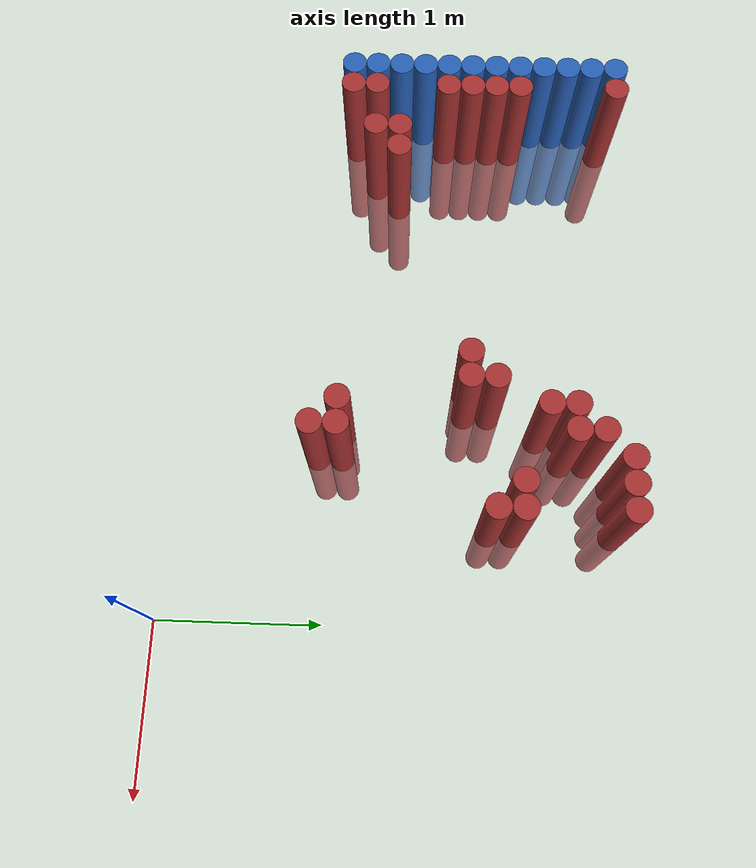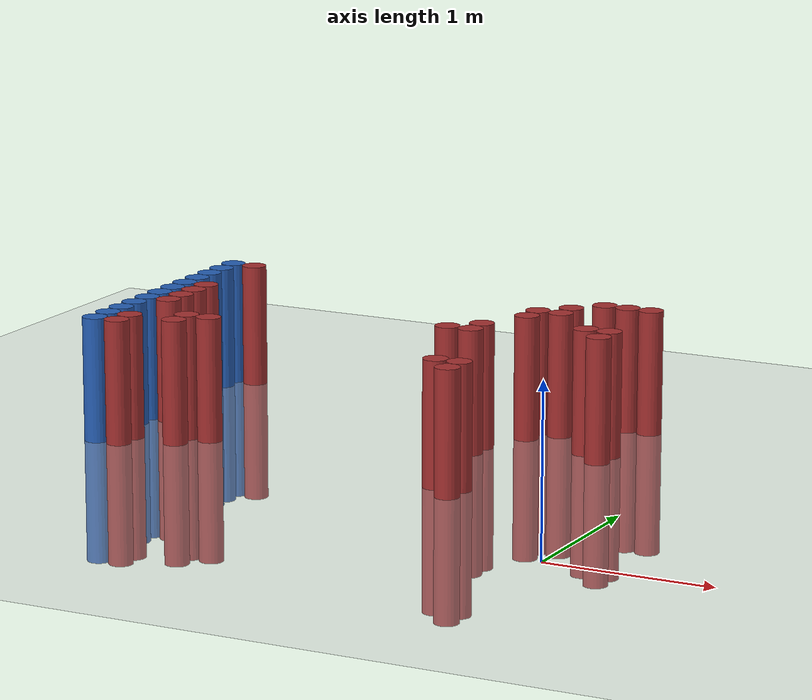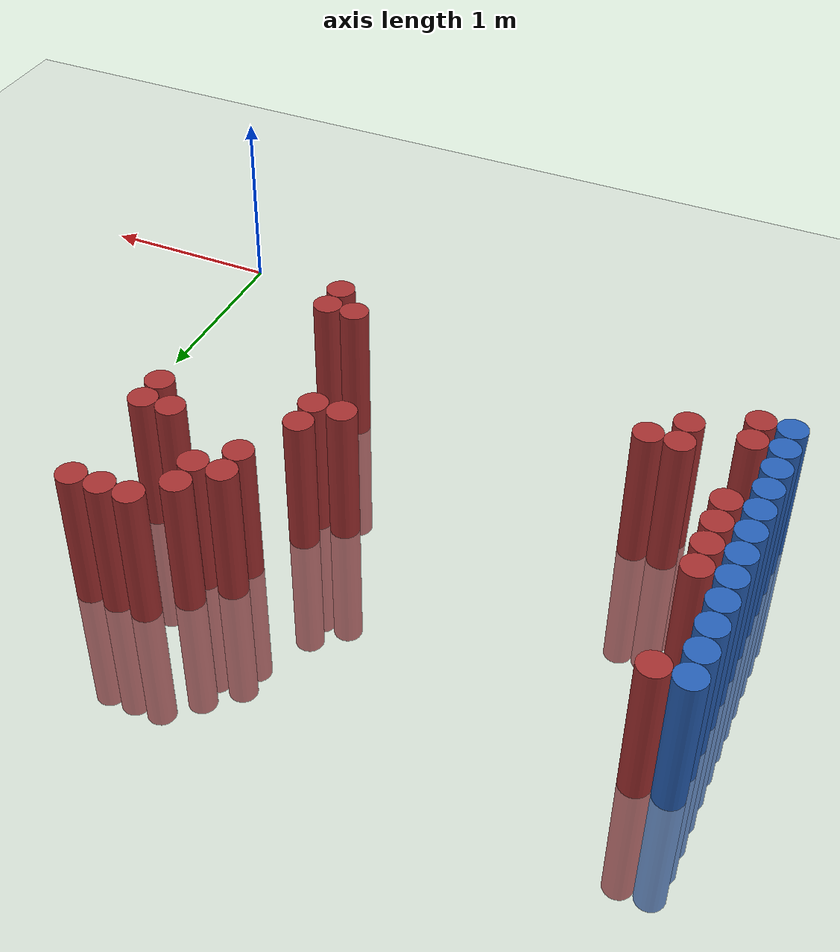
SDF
<sdf version="1.6">
 <world name="default">
  <model name="ground_plane">
   <static>1</static>
   <link name="link">
    <collision name="collision">
     <geometry><plane><normal>0 0 1</normal><size>100 100</size></plane></geometry>
     <surface><friction><ode><mu>100</mu><mu2>50</mu2></ode></friction></surface>
    </collision>
    <visual name="visual">
     <cast_shadows>0</cast_shadows>
     <geometry><plane><normal>0 0 1</normal><size>100 100</size></plane></geometry>
     <material>
      <script><uri>file://media/materials/scripts/gazebo.material</uri><name>Gazebo/Grey</name></script>
     </material>
    </visual>
   </link>
  </model>
  <model name="unit_cylinder_129">
   <static>1</static>
   <pose>-3.425000 1.075000 0.000000 0.000000 0.000000 0.000000</pose>
   <link name="link">
    <inertial>
     <mass>1</mass>
     <inertia><ixx>0.145833</ixx><ixy>0</ixy><ixz>0</ixz><iyy>0.145833</iyy><iyz>0</iyz><izz>0.125</izz></inertia>
    </inertial>
    <collision name="collision">
     <geometry><cylinder><radius>0.075000</radius><length>1.5</length></cylinder></geometry>
    </collision>
    <visual name="visual">
     <geometry><cylinder><radius>0.075000</radius><length>1.5</length></cylinder></geometry>
     <material>
      <ambient>0.152000 0.379000 0.720000 1</ambient>
      <diffuse>0.152000 0.379000 0.720000 1</diffuse>
     </material>
     <material>
      <script><name>Gazebo/Grey</name><uri>file://media/materials/scripts/gazebo.material</uri></script>
     </material>
    </visual>
   </link>
  </model>
  <model name="unit_cylinder_131">
   <static>1</static>
   <pose>-3.425000 1.225000 0.000000 0.000000 0.000000 0.000000</pose>
   <link name="link">
    <inertial>
     <mass>1</mass>
     <inertia><ixx>0.145833</ixx><ixy>0</ixy><ixz>0</ixz><iyy>0.145833</iyy><iyz>0</iyz><izz>0.125</izz></inertia>
    </inertial>
    <collision name="collision">
     <geometry><cylinder><radius>0.075000</radius><length>1.5</length></cylinder></geometry>
    </collision>
    <visual name="visual">
     <geometry><cylinder><radius>0.075000</radius><length>1.5</length></cylinder></geometry>
     <material>
      <ambient>0.152000 0.379000 0.720000 1</ambient>
      <diffuse>0.152000 0.379000 0.720000 1</diffuse>
     </material>
     <material>
      <script><name>Gazebo/Grey</name><uri>file://media/materials/scripts/gazebo.material</uri></script>
     </material>
    </visual>
   </link>
  </model>
  <model name="unit_cylinder_133">
   <static>1</static>
   <pose>-3.425000 1.375000 0.000000 0.000000 0.000000 0.000000</pose>
   <link name="link">
    <inertial>
     <mass>1</mass>
     <inertia><ixx>0.145833</ixx><ixy>0</ixy><ixz>0</ixz><iyy>0.145833</iyy><iyz>0</iyz><izz>0.125</izz></inertia>
    </inertial>
    <collision name="collision">
     <geometry><cylinder><radius>0.075000</radius><length>1.5</length></cylinder></geometry>
    </collision>
    <visual name="visual">
     <geometry><cylinder><radius>0.075000</radius><length>1.5</length></cylinder></geometry>
     <material>
      <ambient>0.152000 0.379000 0.720000 1</ambient>
      <diffuse>0.152000 0.379000 0.720000 1</diffuse>
     </material>
     <material>
      <script><name>Gazebo/Grey</name><uri>file://media/materials/scripts/gazebo.material</uri></script>
     </material>
    </visual>
   </link>
  </model>
  <model name="unit_cylinder_135">
   <static>1</static>
   <pose>-3.425000 1.525000 0.000000 0.000000 0.000000 0.000000</pose>
   <link name="link">
    <inertial>
     <mass>1</mass>
     <inertia><ixx>0.145833</ixx><ixy>0</ixy><ixz>0</ixz><iyy>0.145833</iyy><iyz>0</iyz><izz>0.125</izz></inertia>
    </inertial>
    <collision name="collision">
     <geometry><cylinder><radius>0.075000</radius><length>1.5</length></cylinder></geometry>
    </collision>
    <visual name="visual">
     <geometry><cylinder><radius>0.075000</radius><length>1.5</length></cylinder></geometry>
     <material>
      <ambient>0.152000 0.379000 0.720000 1</ambient>
      <diffuse>0.152000 0.379000 0.720000 1</diffuse>
     </material>
     <material>
      <script><name>Gazebo/Grey</name><uri>file://media/materials/scripts/gazebo.material</uri></script>
     </material>
    </visual>
   </link>
  </model>
  <model name="unit_cylinder_137">
   <static>1</static>
   <pose>-3.425000 1.675000 0.000000 0.000000 0.000000 0.000000</pose>
   <link name="link">
    <inertial>
     <mass>1</mass>
     <inertia><ixx>0.145833</ixx><ixy>0</ixy><ixz>0</ixz><iyy>0.145833</iyy><iyz>0</iyz><izz>0.125</izz></inertia>
    </inertial>
    <collision name="collision">
     <geometry><cylinder><radius>0.075000</radius><length>1.5</length></cylinder></geometry>
    </collision>
    <visual name="visual">
     <geometry><cylinder><radius>0.075000</radius><length>1.5</length></cylinder></geometry>
     <material>
      <ambient>0.152000 0.379000 0.720000 1</ambient>
      <diffuse>0.152000 0.379000 0.720000 1</diffuse>
     </material>
     <material>
      <script><name>Gazebo/Grey</name><uri>file://media/materials/scripts/gazebo.material</uri></script>
     </material>
    </visual>
   </link>
  </model>
  <model name="unit_cylinder_139">
   <static>1</static>
   <pose>-3.425000 1.825000 0.000000 0.000000 0.000000 0.000000</pose>
   <link name="link">
    <inertial>
     <mass>1</mass>
     <inertia><ixx>0.145833</ixx><ixy>0</ixy><ixz>0</ixz><iyy>0.145833</iyy><iyz>0</iyz><izz>0.125</izz></inertia>
    </inertial>
    <collision name="collision">
     <geometry><cylinder><radius>0.075000</radius><length>1.5</length></cylinder></geometry>
    </collision>
    <visual name="visual">
     <geometry><cylinder><radius>0.075000</radius><length>1.5</length></cylinder></geometry>
     <material>
      <ambient>0.152000 0.379000 0.720000 1</ambient>
      <diffuse>0.152000 0.379000 0.720000 1</diffuse>
     </material>
     <material>
      <script><name>Gazebo/Grey</name><uri>file://media/materials/scripts/gazebo.material</uri></script>
     </material>
    </visual>
   </link>
  </model>
  <model name="unit_cylinder_141">
   <static>1</static>
   <pose>-3.425000 1.975000 0.000000 0.000000 0.000000 0.000000</pose>
   <link name="link">
    <inertial>
     <mass>1</mass>
     <inertia><ixx>0.145833</ixx><ixy>0</ixy><ixz>0</ixz><iyy>0.145833</iyy><iyz>0</iyz><izz>0.125</izz></inertia>
    </inertial>
    <collision name="collision">
     <geometry><cylinder><radius>0.075000</radius><length>1.5</length></cylinder></geometry>
    </collision>
    <visual name="visual">
     <geometry><cylinder><radius>0.075000</radius><length>1.5</length></cylinder></geometry>
     <material>
      <ambient>0.152000 0.379000 0.720000 1</ambient>
      <diffuse>0.152000 0.379000 0.720000 1</diffuse>
     </material>
     <material>
      <script><name>Gazebo/Grey</name><uri>file://media/materials/scripts/gazebo.material</uri></script>
     </material>
    </visual>
   </link>
  </model>
  <model name="unit_cylinder_143">
   <static>1</static>
   <pose>-3.425000 2.125000 0.000000 0.000000 0.000000 0.000000</pose>
   <link name="link">
    <inertial>
     <mass>1</mass>
     <inertia><ixx>0.145833</ixx><ixy>0</ixy><ixz>0</ixz><iyy>0.145833</iyy><iyz>0</iyz><izz>0.125</izz></inertia>
    </inertial>
    <collision name="collision">
     <geometry><cylinder><radius>0.075000</radius><length>1.5</length></cylinder></geometry>
    </collision>
    <visual name="visual">
     <geometry><cylinder><radius>0.075000</radius><length>1.5</length></cylinder></geometry>
     <material>
      <ambient>0.152000 0.379000 0.720000 1</ambient>
      <diffuse>0.152000 0.379000 0.720000 1</diffuse>
     </material>
     <material>
      <script><name>Gazebo/Grey</name><uri>file://media/materials/scripts/gazebo.material</uri></script>
     </material>
    </visual>
   </link>
  </model>
  <model name="unit_cylinder_145">
   <static>1</static>
   <pose>-3.425000 2.275000 0.000000 0.000000 0.000000 0.000000</pose>
   <link name="link">
    <inertial>
     <mass>1</mass>
     <inertia><ixx>0.145833</ixx><ixy>0</ixy><ixz>0</ixz><iyy>0.145833</iyy><iyz>0</iyz><izz>0.125</izz></inertia>
    </inertial>
    <collision name="collision">
     <geometry><cylinder><radius>0.075000</radius><length>1.5</length></cylinder></geometry>
    </collision>
    <visual name="visual">
     <geometry><cylinder><radius>0.075000</radius><length>1.5</length></cylinder></geometry>
     <material>
      <ambient>0.152000 0.379000 0.720000 1</ambient>
      <diffuse>0.152000 0.379000 0.720000 1</diffuse>
     </material>
     <material>
      <script><name>Gazebo/Grey</name><uri>file://media/materials/scripts/gazebo.material</uri></script>
     </material>
    </visual>
   </link>
  </model>
  <model name="unit_cylinder_147">
   <static>1</static>
   <pose>-3.425000 2.425000 0.000000 0.000000 0.000000 0.000000</pose>
   <link name="link">
    <inertial>
     <mass>1</mass>
     <inertia><ixx>0.145833</ixx><ixy>0</ixy><ixz>0</ixz><iyy>0.145833</iyy><iyz>0</iyz><izz>0.125</izz></inertia>
    </inertial>
    <collision name="collision">
     <geometry><cylinder><radius>0.075000</radius><length>1.5</length></cylinder></geometry>
    </collision>
    <visual name="visual">
     <geometry><cylinder><radius>0.075000</radius><length>1.5</length></cylinder></geometry>
     <material>
      <ambient>0.152000 0.379000 0.720000 1</ambient>
      <diffuse>0.152000 0.379000 0.720000 1</diffuse>
     </material>
     <material>
      <script><name>Gazebo/Grey</name><uri>file://media/materials/scripts/gazebo.material</uri></script>
     </material>
    </visual>
   </link>
  </model>
  <model name="unit_cylinder_149">
   <static>1</static>
   <pose>-3.425000 2.575000 0.000000 0.000000 0.000000 0.000000</pose>
   <link name="link">
    <inertial>
     <mass>1</mass>
     <inertia><ixx>0.145833</ixx><ixy>0</ixy><ixz>0</ixz><iyy>0.145833</iyy><iyz>0</iyz><izz>0.125</izz></inertia>
    </inertial>
    <collision name="collision">
     <geometry><cylinder><radius>0.075000</radius><length>1.5</length></cylinder></geometry>
    </collision>
    <visual name="visual">
     <geometry><cylinder><radius>0.075000</radius><length>1.5</length></cylinder></geometry>
     <material>
      <ambient>0.152000 0.379000 0.720000 1</ambient>
      <diffuse>0.152000 0.379000 0.720000 1</diffuse>
     </material>
     <material>
      <script><name>Gazebo/Grey</name><uri>file://media/materials/scripts/gazebo.material</uri></script>
     </material>
    </visual>
   </link>
  </model>
  <model name="unit_cylinder_151">
   <static>1</static>
   <pose>-3.425000 2.725000 0.000000 0.000000 0.000000 0.000000</pose>
   <link name="link">
    <inertial>
     <mass>1</mass>
     <inertia><ixx>0.145833</ixx><ixy>0</ixy><ixz>0</ixz><iyy>0.145833</iyy><iyz>0</iyz><izz>0.125</izz></inertia>
    </inertial>
    <collision name="collision">
     <geometry><cylinder><radius>0.075000</radius><length>1.5</length></cylinder></geometry>
    </collision>
    <visual name="visual">
     <geometry><cylinder><radius>0.075000</radius><length>1.5</length></cylinder></geometry>
     <material>
      <ambient>0.152000 0.379000 0.720000 1</ambient>
      <diffuse>0.152000 0.379000 0.720000 1</diffuse>
     </material>
     <material>
      <script><name>Gazebo/Grey</name><uri>file://media/materials/scripts/gazebo.material</uri></script>
     </material>
    </visual>
   </link>
  </model>
  <model name="unit_cylinder_228">
   <static>1</static>
   <pose>-3.425000 1.075000 0.000000 0.000000 0.000000 0.000000</pose>
   <link name="link">
    <inertial>
     <mass>1</mass>
     <inertia><ixx>0.145833</ixx><ixy>0</ixy><ixz>0</ixz><iyy>0.145833</iyy><iyz>0</iyz><izz>0.125</izz></inertia>
    </inertial>
    <collision name="collision">
     <geometry><cylinder><radius>0.075000</radius><length>1.5</length></cylinder></geometry>
    </collision>
    <visual name="visual">
     <geometry><cylinder><radius>0.075000</radius><length>1.5</length></cylinder></geometry>
     <material>
      <ambient>0.152000 0.379000 0.720000 1</ambient>
      <diffuse>0.152000 0.379000 0.720000 1</diffuse>
     </material>
     <material>
      <script><name>Gazebo/Grey</name><uri>file://media/materials/scripts/gazebo.material</uri></script>
     </material>
    </visual>
   </link>
  </model>
  <model name="unit_cylinder_229">
   <static>1</static>
   <pose>-3.425000 1.225000 0.000000 0.000000 0.000000 0.000000</pose>
   <link name="link">
    <inertial>
     <mass>1</mass>
     <inertia><ixx>0.145833</ixx><ixy>0</ixy><ixz>0</ixz><iyy>0.145833</iyy><iyz>0</iyz><izz>0.125</izz></inertia>
    </inertial>
    <collision name="collision">
     <geometry><cylinder><radius>0.075000</radius><length>1.5</length></cylinder></geometry>
    </collision>
    <visual name="visual">
     <geometry><cylinder><radius>0.075000</radius><length>1.5</length></cylinder></geometry>
     <material>
      <ambient>0.152000 0.379000 0.720000 1</ambient>
      <diffuse>0.152000 0.379000 0.720000 1</diffuse>
     </material>
     <material>
      <script><name>Gazebo/Grey</name><uri>file://media/materials/scripts/gazebo.material</uri></script>
     </material>
    </visual>
   </link>
  </model>
  <model name="unit_cylinder_230">
   <static>1</static>
   <pose>-3.425000 1.375000 0.000000 0.000000 0.000000 0.000000</pose>
   <link name="link">
    <inertial>
     <mass>1</mass>
     <inertia><ixx>0.145833</ixx><ixy>0</ixy><ixz>0</ixz><iyy>0.145833</iyy><iyz>0</iyz><izz>0.125</izz></inertia>
    </inertial>
    <collision name="collision">
     <geometry><cylinder><radius>0.075000</radius><length>1.5</length></cylinder></geometry>
    </collision>
    <visual name="visual">
     <geometry><cylinder><radius>0.075000</radius><length>1.5</length></cylinder></geometry>
     <material>
      <ambient>0.152000 0.379000 0.720000 1</ambient>
      <diffuse>0.152000 0.379000 0.720000 1</diffuse>
     </material>
     <material>
      <script><name>Gazebo/Grey</name><uri>file://media/materials/scripts/gazebo.material</uri></script>
     </material>
    </visual>
   </link>
  </model>
  <model name="unit_cylinder_231">
   <static>1</static>
   <pose>-3.425000 1.525000 0.000000 0.000000 0.000000 0.000000</pose>
   <link name="link">
    <inertial>
     <mass>1</mass>
     <inertia><ixx>0.145833</ixx><ixy>0</ixy><ixz>0</ixz><iyy>0.145833</iyy><iyz>0</iyz><izz>0.125</izz></inertia>
    </inertial>
    <collision name="collision">
     <geometry><cylinder><radius>0.075000</radius><length>1.5</length></cylinder></geometry>
    </collision>
    <visual name="visual">
     <geometry><cylinder><radius>0.075000</radius><length>1.5</length></cylinder></geometry>
     <material>
      <ambient>0.152000 0.379000 0.720000 1</ambient>
      <diffuse>0.152000 0.379000 0.720000 1</diffuse>
     </material>
     <material>
      <script><name>Gazebo/Grey</name><uri>file://media/materials/scripts/gazebo.material</uri></script>
     </material>
    </visual>
   </link>
  </model>
  <model name="unit_cylinder_232">
   <static>1</static>
   <pose>-3.425000 1.675000 0.000000 0.000000 0.000000 0.000000</pose>
   <link name="link">
    <inertial>
     <mass>1</mass>
     <inertia><ixx>0.145833</ixx><ixy>0</ixy><ixz>0</ixz><iyy>0.145833</iyy><iyz>0</iyz><izz>0.125</izz></inertia>
    </inertial>
    <collision name="collision">
     <geometry><cylinder><radius>0.075000</radius><length>1.5</length></cylinder></geometry>
    </collision>
    <visual name="visual">
     <geometry><cylinder><radius>0.075000</radius><length>1.5</length></cylinder></geometry>
     <material>
      <ambient>0.152000 0.379000 0.720000 1</ambient>
      <diffuse>0.152000 0.379000 0.720000 1</diffuse>
     </material>
     <material>
      <script><name>Gazebo/Grey</name><uri>file://media/materials/scripts/gazebo.material</uri></script>
     </material>
    </visual>
   </link>
  </model>
  <model name="unit_cylinder_233">
   <static>1</static>
   <pose>-3.425000 1.825000 0.000000 0.000000 0.000000 0.000000</pose>
   <link name="link">
    <inertial>
     <mass>1</mass>
     <inertia><ixx>0.145833</ixx><ixy>0</ixy><ixz>0</ixz><iyy>0.145833</iyy><iyz>0</iyz><izz>0.125</izz></inertia>
    </inertial>
    <collision name="collision">
     <geometry><cylinder><radius>0.075000</radius><length>1.5</length></cylinder></geometry>
    </collision>
    <visual name="visual">
     <geometry><cylinder><radius>0.075000</radius><length>1.5</length></cylinder></geometry>
     <material>
      <ambient>0.152000 0.379000 0.720000 1</ambient>
      <diffuse>0.152000 0.379000 0.720000 1</diffuse>
     </material>
     <material>
      <script><name>Gazebo/Grey</name><uri>file://media/materials/scripts/gazebo.material</uri></script>
     </material>
    </visual>
   </link>
  </model>
  <model name="unit_cylinder_234">
   <static>1</static>
   <pose>-3.425000 1.975000 0.000000 0.000000 0.000000 0.000000</pose>
   <link name="link">
    <inertial>
     <mass>1</mass>
     <inertia><ixx>0.145833</ixx><ixy>0</ixy><ixz>0</ixz><iyy>0.145833</iyy><iyz>0</iyz><izz>0.125</izz></inertia>
    </inertial>
    <collision name="collision">
     <geometry><cylinder><radius>0.075000</radius><length>1.5</length></cylinder></geometry>
    </collision>
    <visual name="visual">
     <geometry><cylinder><radius>0.075000</radius><length>1.5</length></cylinder></geometry>
     <material>
      <ambient>0.152000 0.379000 0.720000 1</ambient>
      <diffuse>0.152000 0.379000 0.720000 1</diffuse>
     </material>
     <material>
      <script><name>Gazebo/Grey</name><uri>file://media/materials/scripts/gazebo.material</uri></script>
     </material>
    </visual>
   </link>
  </model>
  <model name="unit_cylinder_235">
   <static>1</static>
   <pose>-3.425000 2.125000 0.000000 0.000000 0.000000 0.000000</pose>
   <link name="link">
    <inertial>
     <mass>1</mass>
     <inertia><ixx>0.145833</ixx><ixy>0</ixy><ixz>0</ixz><iyy>0.145833</iyy><iyz>0</iyz><izz>0.125</izz></inertia>
    </inertial>
    <collision name="collision">
     <geometry><cylinder><radius>0.075000</radius><length>1.5</length></cylinder></geometry>
    </collision>
    <visual name="visual">
     <geometry><cylinder><radius>0.075000</radius><length>1.5</length></cylinder></geometry>
     <material>
      <ambient>0.152000 0.379000 0.720000 1</ambient>
      <diffuse>0.152000 0.379000 0.720000 1</diffuse>
     </material>
     <material>
      <script><name>Gazebo/Grey</name><uri>file://media/materials/scripts/gazebo.material</uri></script>
     </material>
    </visual>
   </link>
  </model>
  <model name="unit_cylinder_236">
   <static>1</static>
   <pose>-3.425000 2.275000 0.000000 0.000000 0.000000 0.000000</pose>
   <link name="link">
    <inertial>
     <mass>1</mass>
     <inertia><ixx>0.145833</ixx><ixy>0</ixy><ixz>0</ixz><iyy>0.145833</iyy><iyz>0</iyz><izz>0.125</izz></inertia>
    </inertial>
    <collision name="collision">
     <geometry><cylinder><radius>0.075000</radius><length>1.5</length></cylinder></geometry>
    </collision>
    <visual name="visual">
     <geometry><cylinder><radius>0.075000</radius><length>1.5</length></cylinder></geometry>
     <material>
      <ambient>0.152000 0.379000 0.720000 1</ambient>
      <diffuse>0.152000 0.379000 0.720000 1</diffuse>
     </material>
     <material>
      <script><name>Gazebo/Grey</name><uri>file://media/materials/scripts/gazebo.material</uri></script>
     </material>
    </visual>
   </link>
  </model>
  <model name="unit_cylinder_237">
   <static>1</static>
   <pose>-3.425000 2.425000 0.000000 0.000000 0.000000 0.000000</pose>
   <link name="link">
    <inertial>
     <mass>1</mass>
     <inertia><ixx>0.145833</ixx><ixy>0</ixy><ixz>0</ixz><iyy>0.145833</iyy><iyz>0</iyz><izz>0.125</izz></inertia>
    </inertial>
    <collision name="collision">
     <geometry><cylinder><radius>0.075000</radius><length>1.5</length></cylinder></geometry>
    </collision>
    <visual name="visual">
     <geometry><cylinder><radius>0.075000</radius><length>1.5</length></cylinder></geometry>
     <material>
      <ambient>0.152000 0.379000 0.720000 1</ambient>
      <diffuse>0.152000 0.379000 0.720000 1</diffuse>
     </material>
     <material>
      <script><name>Gazebo/Grey</name><uri>file://media/materials/scripts/gazebo.material</uri></script>
     </material>
    </visual>
   </link>
  </model>
  <model name="unit_cylinder_238">
   <static>1</static>
   <pose>-3.425000 2.575000 0.000000 0.000000 0.000000 0.000000</pose>
   <link name="link">
    <inertial>
     <mass>1</mass>
     <inertia><ixx>0.145833</ixx><ixy>0</ixy><ixz>0</ixz><iyy>0.145833</iyy><iyz>0</iyz><izz>0.125</izz></inertia>
    </inertial>
    <collision name="collision">
     <geometry><cylinder><radius>0.075000</radius><length>1.5</length></cylinder></geometry>
    </collision>
    <visual name="visual">
     <geometry><cylinder><radius>0.075000</radius><length>1.5</length></cylinder></geometry>
     <material>
      <ambient>0.152000 0.379000 0.720000 1</ambient>
      <diffuse>0.152000 0.379000 0.720000 1</diffuse>
     </material>
     <material>
      <script><name>Gazebo/Grey</name><uri>file://media/materials/scripts/gazebo.material</uri></script>
     </material>
    </visual>
   </link>
  </model>
  <model name="unit_cylinder_239">
   <static>1</static>
   <pose>-3.425000 2.725000 0.000000 0.000000 0.000000 0.000000</pose>
   <link name="link">
    <inertial>
     <mass>1</mass>
     <inertia><ixx>0.145833</ixx><ixy>0</ixy><ixz>0</ixz><iyy>0.145833</iyy><iyz>0</iyz><izz>0.125</izz></inertia>
    </inertial>
    <collision name="collision">
     <geometry><cylinder><radius>0.075000</radius><length>1.5</length></cylinder></geometry>
    </collision>
    <visual name="visual">
     <geometry><cylinder><radius>0.075000</radius><length>1.5</length></cylinder></geometry>
     <material>
      <ambient>0.152000 0.379000 0.720000 1</ambient>
      <diffuse>0.152000 0.379000 0.720000 1</diffuse>
     </material>
     <material>
      <script><name>Gazebo/Grey</name><uri>file://media/materials/scripts/gazebo.material</uri></script>
     </material>
    </visual>
   </link>
  </model>
  <model name="unit_cylinder_269">
   <static>1</static>
   <pose>-3.275000 1.075000 0.000000 0.000000 0.000000 0.000000</pose>
   <link name="link">
    <inertial>
     <mass>1</mass>
     <inertia><ixx>0.145833</ixx><ixy>0</ixy><ixz>0</ixz><iyy>0.145833</iyy><iyz>0</iyz><izz>0.125</izz></inertia>
    </inertial>
    <collision name="collision">
     <geometry><cylinder><radius>0.075000</radius><length>1.5</length></cylinder></geometry>
    </collision>
    <visual name="visual">
     <geometry><cylinder><radius>0.075000</radius><length>1.5</length></cylinder></geometry>
     <material>
      <ambient>0.648000 0.192000 0.192000 1</ambient>
      <diffuse>0.648000 0.192000 0.192000 1</diffuse>
     </material>
     <material>
      <script><name>Gazebo/Grey</name><uri>file://media/materials/scripts/gazebo.material</uri></script>
     </material>
    </visual>
   </link>
  </model>
  <model name="unit_cylinder_270">
   <static>1</static>
   <pose>-3.275000 1.225000 0.000000 0.000000 0.000000 0.000000</pose>
   <link name="link">
    <inertial>
     <mass>1</mass>
     <inertia><ixx>0.145833</ixx><ixy>0</ixy><ixz>0</ixz><iyy>0.145833</iyy><iyz>0</iyz><izz>0.125</izz></inertia>
    </inertial>
    <collision name="collision">
     <geometry><cylinder><radius>0.075000</radius><length>1.5</length></cylinder></geometry>
    </collision>
    <visual name="visual">
     <geometry><cylinder><radius>0.075000</radius><length>1.5</length></cylinder></geometry>
     <material>
      <ambient>0.648000 0.192000 0.192000 1</ambient>
      <diffuse>0.648000 0.192000 0.192000 1</diffuse>
     </material>
     <material>
      <script><name>Gazebo/Grey</name><uri>file://media/materials/scripts/gazebo.material</uri></script>
     </material>
    </visual>
   </link>
  </model>
  <model name="unit_cylinder_271">
   <static>1</static>
   <pose>-3.275000 1.675000 0.000000 0.000000 0.000000 0.000000</pose>
   <link name="link">
    <inertial>
     <mass>1</mass>
     <inertia><ixx>0.145833</ixx><ixy>0</ixy><ixz>0</ixz><iyy>0.145833</iyy><iyz>0</iyz><izz>0.125</izz></inertia>
    </inertial>
    <collision name="collision">
     <geometry><cylinder><radius>0.075000</radius><length>1.5</length></cylinder></geometry>
    </collision>
    <visual name="visual">
     <geometry><cylinder><radius>0.075000</radius><length>1.5</length></cylinder></geometry>
     <material>
      <ambient>0.648000 0.192000 0.192000 1</ambient>
      <diffuse>0.648000 0.192000 0.192000 1</diffuse>
     </material>
     <material>
      <script><name>Gazebo/Grey</name><uri>file://media/materials/scripts/gazebo.material</uri></script>
     </material>
    </visual>
   </link>
  </model>
  <model name="unit_cylinder_272">
   <static>1</static>
   <pose>-3.275000 1.825000 0.000000 0.000000 0.000000 0.000000</pose>
   <link name="link">
    <inertial>
     <mass>1</mass>
     <inertia><ixx>0.145833</ixx><ixy>0</ixy><ixz>0</ixz><iyy>0.145833</iyy><iyz>0</iyz><izz>0.125</izz></inertia>
    </inertial>
    <collision name="collision">
     <geometry><cylinder><radius>0.075000</radius><length>1.5</length></cylinder></geometry>
    </collision>
    <visual name="visual">
     <geometry><cylinder><radius>0.075000</radius><length>1.5</length></cylinder></geometry>
     <material>
      <ambient>0.648000 0.192000 0.192000 1</ambient>
      <diffuse>0.648000 0.192000 0.192000 1</diffuse>
     </material>
     <material>
      <script><name>Gazebo/Grey</name><uri>file://media/materials/scripts/gazebo.material</uri></script>
     </material>
    </visual>
   </link>
  </model>
  <model name="unit_cylinder_273">
   <static>1</static>
   <pose>-3.275000 1.975000 0.000000 0.000000 0.000000 0.000000</pose>
   <link name="link">
    <inertial>
     <mass>1</mass>
     <inertia><ixx>0.145833</ixx><ixy>0</ixy><ixz>0</ixz><iyy>0.145833</iyy><iyz>0</iyz><izz>0.125</izz></inertia>
    </inertial>
    <collision name="collision">
     <geometry><cylinder><radius>0.075000</radius><length>1.5</length></cylinder></geometry>
    </collision>
    <visual name="visual">
     <geometry><cylinder><radius>0.075000</radius><length>1.5</length></cylinder></geometry>
     <material>
      <ambient>0.648000 0.192000 0.192000 1</ambient>
      <diffuse>0.648000 0.192000 0.192000 1</diffuse>
     </material>
     <material>
      <script><name>Gazebo/Grey</name><uri>file://media/materials/scripts/gazebo.material</uri></script>
     </material>
    </visual>
   </link>
  </model>
  <model name="unit_cylinder_274">
   <static>1</static>
   <pose>-3.275000 2.125000 0.000000 0.000000 0.000000 0.000000</pose>
   <link name="link">
    <inertial>
     <mass>1</mass>
     <inertia><ixx>0.145833</ixx><ixy>0</ixy><ixz>0</ixz><iyy>0.145833</iyy><iyz>0</iyz><izz>0.125</izz></inertia>
    </inertial>
    <collision name="collision">
     <geometry><cylinder><radius>0.075000</radius><length>1.5</length></cylinder></geometry>
    </collision>
    <visual name="visual">
     <geometry><cylinder><radius>0.075000</radius><length>1.5</length></cylinder></geometry>
     <material>
      <ambient>0.648000 0.192000 0.192000 1</ambient>
      <diffuse>0.648000 0.192000 0.192000 1</diffuse>
     </material>
     <material>
      <script><name>Gazebo/Grey</name><uri>file://media/materials/scripts/gazebo.material</uri></script>
     </material>
    </visual>
   </link>
  </model>
  <model name="unit_cylinder_275">
   <static>1</static>
   <pose>-3.275000 2.725000 0.000000 0.000000 0.000000 0.000000</pose>
   <link name="link">
    <inertial>
     <mass>1</mass>
     <inertia><ixx>0.145833</ixx><ixy>0</ixy><ixz>0</ixz><iyy>0.145833</iyy><iyz>0</iyz><izz>0.125</izz></inertia>
    </inertial>
    <collision name="collision">
     <geometry><cylinder><radius>0.075000</radius><length>1.5</length></cylinder></geometry>
    </collision>
    <visual name="visual">
     <geometry><cylinder><radius>0.075000</radius><length>1.5</length></cylinder></geometry>
     <material>
      <ambient>0.648000 0.192000 0.192000 1</ambient>
      <diffuse>0.648000 0.192000 0.192000 1</diffuse>
     </material>
     <material>
      <script><name>Gazebo/Grey</name><uri>file://media/materials/scripts/gazebo.material</uri></script>
     </material>
    </visual>
   </link>
  </model>
  <model name="unit_cylinder_288">
   <static>1</static>
   <pose>-2.975000 1.225000 0.000000 0.000000 0.000000 0.000000</pose>
   <link name="link">
    <inertial>
     <mass>1</mass>
     <inertia><ixx>0.145833</ixx><ixy>0</ixy><ixz>0</ixz><iyy>0.145833</iyy><iyz>0</iyz><izz>0.125</izz></inertia>
    </inertial>
    <collision name="collision">
     <geometry><cylinder><radius>0.075000</radius><length>1.5</length></cylinder></geometry>
    </collision>
    <visual name="visual">
     <geometry><cylinder><radius>0.075000</radius><length>1.5</length></cylinder></geometry>
     <material>
      <ambient>0.648000 0.192000 0.192000 1</ambient>
      <diffuse>0.648000 0.192000 0.192000 1</diffuse>
     </material>
     <material>
      <script><name>Gazebo/Grey</name><uri>file://media/materials/scripts/gazebo.material</uri></script>
     </material>
    </visual>
   </link>
  </model>
  <model name="unit_cylinder_289">
   <static>1</static>
   <pose>-2.975000 1.375000 0.000000 0.000000 0.000000 0.000000</pose>
   <link name="link">
    <inertial>
     <mass>1</mass>
     <inertia><ixx>0.145833</ixx><ixy>0</ixy><ixz>0</ixz><iyy>0.145833</iyy><iyz>0</iyz><izz>0.125</izz></inertia>
    </inertial>
    <collision name="collision">
     <geometry><cylinder><radius>0.075000</radius><length>1.5</length></cylinder></geometry>
    </collision>
    <visual name="visual">
     <geometry><cylinder><radius>0.075000</radius><length>1.5</length></cylinder></geometry>
     <material>
      <ambient>0.648000 0.192000 0.192000 1</ambient>
      <diffuse>0.648000 0.192000 0.192000 1</diffuse>
     </material>
     <material>
      <script><name>Gazebo/Grey</name><uri>file://media/materials/scripts/gazebo.material</uri></script>
     </material>
    </visual>
   </link>
  </model>
  <model name="unit_cylinder_291">
   <static>1</static>
   <pose>-2.825000 1.375000 0.000000 0.000000 0.000000 0.000000</pose>
   <link name="link">
    <inertial>
     <mass>1</mass>
     <inertia><ixx>0.145833</ixx><ixy>0</ixy><ixz>0</ixz><iyy>0.145833</iyy><iyz>0</iyz><izz>0.125</izz></inertia>
    </inertial>
    <collision name="collision">
     <geometry><cylinder><radius>0.075000</radius><length>1.5</length></cylinder></geometry>
    </collision>
    <visual name="visual">
     <geometry><cylinder><radius>0.075000</radius><length>1.5</length></cylinder></geometry>
     <material>
      <ambient>0.648000 0.192000 0.192000 1</ambient>
      <diffuse>0.648000 0.192000 0.192000 1</diffuse>
     </material>
     <material>
      <script><name>Gazebo/Grey</name><uri>file://media/materials/scripts/gazebo.material</uri></script>
     </material>
    </visual>
   </link>
  </model>
  <model name="unit_cylinder_325">
   <static>1</static>
   <pose>-1.475000 1.825000 0.000000 0.000000 0.000000 0.000000</pose>
   <link name="link">
    <inertial>
     <mass>1</mass>
     <inertia><ixx>0.145833</ixx><ixy>0</ixy><ixz>0</ixz><iyy>0.145833</iyy><iyz>0</iyz><izz>0.125</izz></inertia>
    </inertial>
    <collision name="collision">
     <geometry><cylinder><radius>0.075000</radius><length>1.5</length></cylinder></geometry>
    </collision>
    <visual name="visual">
     <geometry><cylinder><radius>0.075000</radius><length>1.5</length></cylinder></geometry>
     <material>
      <ambient>0.648000 0.192000 0.192000 1</ambient>
      <diffuse>0.648000 0.192000 0.192000 1</diffuse>
     </material>
     <material>
      <script><name>Gazebo/Grey</name><uri>file://media/materials/scripts/gazebo.material</uri></script>
     </material>
    </visual>
   </link>
  </model>
  <model name="unit_cylinder_332">
   <static>1</static>
   <pose>-1.325000 1.825000 0.000000 0.000000 0.000000 0.000000</pose>
   <link name="link">
    <inertial>
     <mass>1</mass>
     <inertia><ixx>0.145833</ixx><ixy>0</ixy><ixz>0</ixz><iyy>0.145833</iyy><iyz>0</iyz><izz>0.125</izz></inertia>
    </inertial>
    <collision name="collision">
     <geometry><cylinder><radius>0.075000</radius><length>1.5</length></cylinder></geometry>
    </collision>
    <visual name="visual">
     <geometry><cylinder><radius>0.075000</radius><length>1.5</length></cylinder></geometry>
     <material>
      <ambient>0.648000 0.192000 0.192000 1</ambient>
      <diffuse>0.648000 0.192000 0.192000 1</diffuse>
     </material>
     <material>
      <script><name>Gazebo/Grey</name><uri>file://media/materials/scripts/gazebo.material</uri></script>
     </material>
    </visual>
   </link>
  </model>
  <model name="unit_cylinder_333">
   <static>1</static>
   <pose>-1.325000 1.975000 0.000000 0.000000 0.000000 0.000000</pose>
   <link name="link">
    <inertial>
     <mass>1</mass>
     <inertia><ixx>0.145833</ixx><ixy>0</ixy><ixz>0</ixz><iyy>0.145833</iyy><iyz>0</iyz><izz>0.125</izz></inertia>
    </inertial>
    <collision name="collision">
     <geometry><cylinder><radius>0.075000</radius><length>1.5</length></cylinder></geometry>
    </collision>
    <visual name="visual">
     <geometry><cylinder><radius>0.075000</radius><length>1.5</length></cylinder></geometry>
     <material>
      <ambient>0.648000 0.192000 0.192000 1</ambient>
      <diffuse>0.648000 0.192000 0.192000 1</diffuse>
     </material>
     <material>
      <script><name>Gazebo/Grey</name><uri>file://media/materials/scripts/gazebo.material</uri></script>
     </material>
    </visual>
   </link>
  </model>
  <model name="unit_cylinder_343">
   <static>1</static>
   <pose>-1.175000 1.075000 0.000000 0.000000 0.000000 0.000000</pose>
   <link name="link">
    <inertial>
     <mass>1</mass>
     <inertia><ixx>0.145833</ixx><ixy>0</ixy><ixz>0</ixz><iyy>0.145833</iyy><iyz>0</iyz><izz>0.125</izz></inertia>
    </inertial>
    <collision name="collision">
     <geometry><cylinder><radius>0.075000</radius><length>1.5</length></cylinder></geometry>
    </collision>
    <visual name="visual">
     <geometry><cylinder><radius>0.075000</radius><length>1.5</length></cylinder></geometry>
     <material>
      <ambient>0.648000 0.192000 0.192000 1</ambient>
      <diffuse>0.648000 0.192000 0.192000 1</diffuse>
     </material>
     <material>
      <script><name>Gazebo/Grey</name><uri>file://media/materials/scripts/gazebo.material</uri></script>
     </material>
    </visual>
   </link>
  </model>
  <model name="unit_cylinder_344">
   <static>1</static>
   <pose>-1.175000 2.275000 0.000000 0.000000 0.000000 0.000000</pose>
   <link name="link">
    <inertial>
     <mass>1</mass>
     <inertia><ixx>0.145833</ixx><ixy>0</ixy><ixz>0</ixz><iyy>0.145833</iyy><iyz>0</iyz><izz>0.125</izz></inertia>
    </inertial>
    <collision name="collision">
     <geometry><cylinder><radius>0.075000</radius><length>1.5</length></cylinder></geometry>
    </collision>
    <visual name="visual">
     <geometry><cylinder><radius>0.075000</radius><length>1.5</length></cylinder></geometry>
     <material>
      <ambient>0.648000 0.192000 0.192000 1</ambient>
      <diffuse>0.648000 0.192000 0.192000 1</diffuse>
     </material>
     <material>
      <script><name>Gazebo/Grey</name><uri>file://media/materials/scripts/gazebo.material</uri></script>
     </material>
    </visual>
   </link>
  </model>
  <model name="unit_cylinder_345">
   <static>1</static>
   <pose>-1.175000 2.425000 0.000000 0.000000 0.000000 0.000000</pose>
   <link name="link">
    <inertial>
     <mass>1</mass>
     <inertia><ixx>0.145833</ixx><ixy>0</ixy><ixz>0</ixz><iyy>0.145833</iyy><iyz>0</iyz><izz>0.125</izz></inertia>
    </inertial>
    <collision name="collision">
     <geometry><cylinder><radius>0.075000</radius><length>1.5</length></cylinder></geometry>
    </collision>
    <visual name="visual">
     <geometry><cylinder><radius>0.075000</radius><length>1.5</length></cylinder></geometry>
     <material>
      <ambient>0.648000 0.192000 0.192000 1</ambient>
      <diffuse>0.648000 0.192000 0.192000 1</diffuse>
     </material>
     <material>
      <script><name>Gazebo/Grey</name><uri>file://media/materials/scripts/gazebo.material</uri></script>
     </material>
    </visual>
   </link>
  </model>
  <model name="unit_cylinder_351">
   <static>1</static>
   <pose>-1.025000 0.925000 0.000000 0.000000 0.000000 0.000000</pose>
   <link name="link">
    <inertial>
     <mass>1</mass>
     <inertia><ixx>0.145833</ixx><ixy>0</ixy><ixz>0</ixz><iyy>0.145833</iyy><iyz>0</iyz><izz>0.125</izz></inertia>
    </inertial>
    <collision name="collision">
     <geometry><cylinder><radius>0.075000</radius><length>1.5</length></cylinder></geometry>
    </collision>
    <visual name="visual">
     <geometry><cylinder><radius>0.075000</radius><length>1.5</length></cylinder></geometry>
     <material>
      <ambient>0.648000 0.192000 0.192000 1</ambient>
      <diffuse>0.648000 0.192000 0.192000 1</diffuse>
     </material>
     <material>
      <script><name>Gazebo/Grey</name><uri>file://media/materials/scripts/gazebo.material</uri></script>
     </material>
    </visual>
   </link>
  </model>
  <model name="unit_cylinder_352">
   <static>1</static>
   <pose>-1.025000 1.075000 0.000000 0.000000 0.000000 0.000000</pose>
   <link name="link">
    <inertial>
     <mass>1</mass>
     <inertia><ixx>0.145833</ixx><ixy>0</ixy><ixz>0</ixz><iyy>0.145833</iyy><iyz>0</iyz><izz>0.125</izz></inertia>
    </inertial>
    <collision name="collision">
     <geometry><cylinder><radius>0.075000</radius><length>1.5</length></cylinder></geometry>
    </collision>
    <visual name="visual">
     <geometry><cylinder><radius>0.075000</radius><length>1.5</length></cylinder></geometry>
     <material>
      <ambient>0.648000 0.192000 0.192000 1</ambient>
      <diffuse>0.648000 0.192000 0.192000 1</diffuse>
     </material>
     <material>
      <script><name>Gazebo/Grey</name><uri>file://media/materials/scripts/gazebo.material</uri></script>
     </material>
    </visual>
   </link>
  </model>
  <model name="unit_cylinder_353">
   <static>1</static>
   <pose>-1.025000 2.425000 0.000000 0.000000 0.000000 0.000000</pose>
   <link name="link">
    <inertial>
     <mass>1</mass>
     <inertia><ixx>0.145833</ixx><ixy>0</ixy><ixz>0</ixz><iyy>0.145833</iyy><iyz>0</iyz><izz>0.125</izz></inertia>
    </inertial>
    <collision name="collision">
     <geometry><cylinder><radius>0.075000</radius><length>1.5</length></cylinder></geometry>
    </collision>
    <visual name="visual">
     <geometry><cylinder><radius>0.075000</radius><length>1.5</length></cylinder></geometry>
     <material>
      <ambient>0.648000 0.192000 0.192000 1</ambient>
      <diffuse>0.648000 0.192000 0.192000 1</diffuse>
     </material>
     <material>
      <script><name>Gazebo/Grey</name><uri>file://media/materials/scripts/gazebo.material</uri></script>
     </material>
    </visual>
   </link>
  </model>
  <model name="unit_cylinder_354">
   <static>1</static>
   <pose>-1.025000 2.575000 0.000000 0.000000 0.000000 0.000000</pose>
   <link name="link">
    <inertial>
     <mass>1</mass>
     <inertia><ixx>0.145833</ixx><ixy>0</ixy><ixz>0</ixz><iyy>0.145833</iyy><iyz>0</iyz><izz>0.125</izz></inertia>
    </inertial>
    <collision name="collision">
     <geometry><cylinder><radius>0.075000</radius><length>1.5</length></cylinder></geometry>
    </collision>
    <visual name="visual">
     <geometry><cylinder><radius>0.075000</radius><length>1.5</length></cylinder></geometry>
     <material>
      <ambient>0.648000 0.192000 0.192000 1</ambient>
      <diffuse>0.648000 0.192000 0.192000 1</diffuse>
     </material>
     <material>
      <script><name>Gazebo/Grey</name><uri>file://media/materials/scripts/gazebo.material</uri></script>
     </material>
    </visual>
   </link>
  </model>
  <model name="unit_cylinder_359">
   <static>1</static>
   <pose>-0.875000 2.725000 0.000000 0.000000 0.000000 0.000000</pose>
   <link name="link">
    <inertial>
     <mass>1</mass>
     <inertia><ixx>0.145833</ixx><ixy>0</ixy><ixz>0</ixz><iyy>0.145833</iyy><iyz>0</iyz><izz>0.125</izz></inertia>
    </inertial>
    <collision name="collision">
     <geometry><cylinder><radius>0.075000</radius><length>1.5</length></cylinder></geometry>
    </collision>
    <visual name="visual">
     <geometry><cylinder><radius>0.075000</radius><length>1.5</length></cylinder></geometry>
     <material>
      <ambient>0.648000 0.192000 0.192000 1</ambient>
      <diffuse>0.648000 0.192000 0.192000 1</diffuse>
     </material>
     <material>
      <script><name>Gazebo/Grey</name><uri>file://media/materials/scripts/gazebo.material</uri></script>
     </material>
    </visual>
   </link>
  </model>
  <model name="unit_cylinder_364">
   <static>1</static>
   <pose>-0.725000 2.125000 0.000000 0.000000 0.000000 0.000000</pose>
   <link name="link">
    <inertial>
     <mass>1</mass>
     <inertia><ixx>0.145833</ixx><ixy>0</ixy><ixz>0</ixz><iyy>0.145833</iyy><iyz>0</iyz><izz>0.125</izz></inertia>
    </inertial>
    <collision name="collision">
     <geometry><cylinder><radius>0.075000</radius><length>1.5</length></cylinder></geometry>
    </collision>
    <visual name="visual">
     <geometry><cylinder><radius>0.075000</radius><length>1.5</length></cylinder></geometry>
     <material>
      <ambient>0.648000 0.192000 0.192000 1</ambient>
      <diffuse>0.648000 0.192000 0.192000 1</diffuse>
     </material>
     <material>
      <script><name>Gazebo/Grey</name><uri>file://media/materials/scripts/gazebo.material</uri></script>
     </material>
    </visual>
   </link>
  </model>
  <model name="unit_cylinder_365">
   <static>1</static>
   <pose>-0.725000 2.725000 0.000000 0.000000 0.000000 0.000000</pose>
   <link name="link">
    <inertial>
     <mass>1</mass>
     <inertia><ixx>0.145833</ixx><ixy>0</ixy><ixz>0</ixz><iyy>0.145833</iyy><iyz>0</iyz><izz>0.125</izz></inertia>
    </inertial>
    <collision name="collision">
     <geometry><cylinder><radius>0.075000</radius><length>1.5</length></cylinder></geometry>
    </collision>
    <visual name="visual">
     <geometry><cylinder><radius>0.075000</radius><length>1.5</length></cylinder></geometry>
     <material>
      <ambient>0.648000 0.192000 0.192000 1</ambient>
      <diffuse>0.648000 0.192000 0.192000 1</diffuse>
     </material>
     <material>
      <script><name>Gazebo/Grey</name><uri>file://media/materials/scripts/gazebo.material</uri></script>
     </material>
    </visual>
   </link>
  </model>
  <model name="unit_cylinder_369">
   <static>1</static>
   <pose>-0.575000 1.975000 0.000000 0.000000 0.000000 0.000000</pose>
   <link name="link">
    <inertial>
     <mass>1</mass>
     <inertia><ixx>0.145833</ixx><ixy>0</ixy><ixz>0</ixz><iyy>0.145833</iyy><iyz>0</iyz><izz>0.125</izz></inertia>
    </inertial>
    <collision name="collision">
     <geometry><cylinder><radius>0.075000</radius><length>1.5</length></cylinder></geometry>
    </collision>
    <visual name="visual">
     <geometry><cylinder><radius>0.075000</radius><length>1.5</length></cylinder></geometry>
     <material>
      <ambient>0.648000 0.192000 0.192000 1</ambient>
      <diffuse>0.648000 0.192000 0.192000 1</diffuse>
     </material>
     <material>
      <script><name>Gazebo/Grey</name><uri>file://media/materials/scripts/gazebo.material</uri></script>
     </material>
    </visual>
   </link>
  </model>
  <model name="unit_cylinder_370">
   <static>1</static>
   <pose>-0.575000 2.125000 0.000000 0.000000 0.000000 0.000000</pose>
   <link name="link">
    <inertial>
     <mass>1</mass>
     <inertia><ixx>0.145833</ixx><ixy>0</ixy><ixz>0</ixz><iyy>0.145833</iyy><iyz>0</iyz><izz>0.125</izz></inertia>
    </inertial>
    <collision name="collision">
     <geometry><cylinder><radius>0.075000</radius><length>1.5</length></cylinder></geometry>
    </collision>
    <visual name="visual">
     <geometry><cylinder><radius>0.075000</radius><length>1.5</length></cylinder></geometry>
     <material>
      <ambient>0.648000 0.192000 0.192000 1</ambient>
      <diffuse>0.648000 0.192000 0.192000 1</diffuse>
     </material>
     <material>
      <script><name>Gazebo/Grey</name><uri>file://media/materials/scripts/gazebo.material</uri></script>
     </material>
    </visual>
   </link>
  </model>
  <model name="unit_cylinder_371">
   <static>1</static>
   <pose>-0.575000 2.725000 0.000000 0.000000 0.000000 0.000000</pose>
   <link name="link">
    <inertial>
     <mass>1</mass>
     <inertia><ixx>0.145833</ixx><ixy>0</ixy><ixz>0</ixz><iyy>0.145833</iyy><iyz>0</iyz><izz>0.125</izz></inertia>
    </inertial>
    <collision name="collision">
     <geometry><cylinder><radius>0.075000</radius><length>1.5</length></cylinder></geometry>
    </collision>
    <visual name="visual">
     <geometry><cylinder><radius>0.075000</radius><length>1.5</length></cylinder></geometry>
     <material>
      <ambient>0.648000 0.192000 0.192000 1</ambient>
      <diffuse>0.648000 0.192000 0.192000 1</diffuse>
     </material>
     <material>
      <script><name>Gazebo/Grey</name><uri>file://media/materials/scripts/gazebo.material</uri></script>
     </material>
    </visual>
   </link>
  </model>
 </world>
</sdf>
